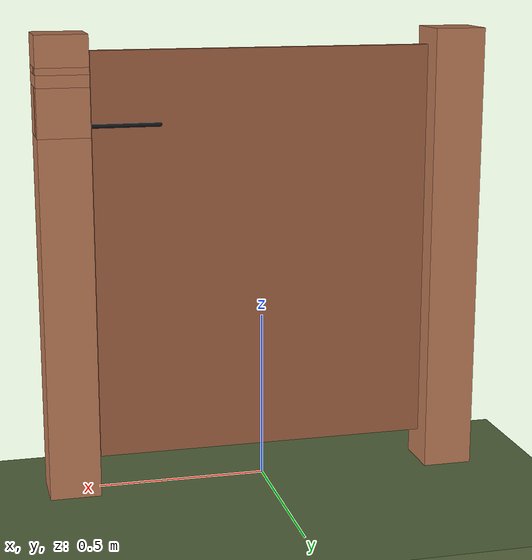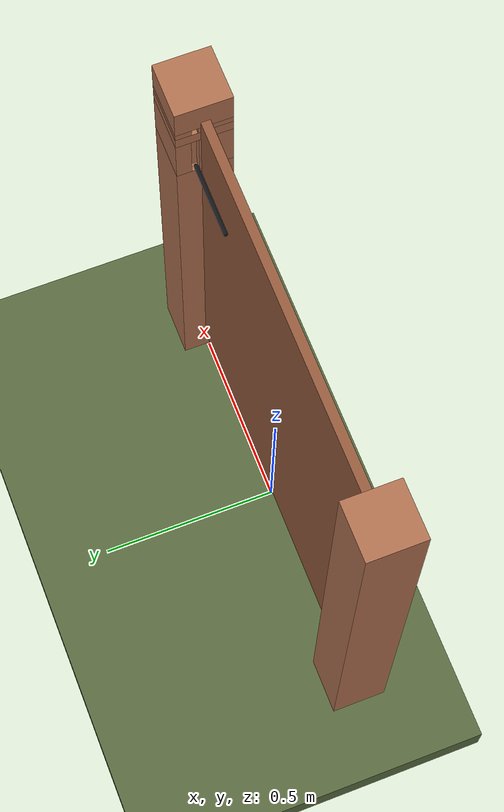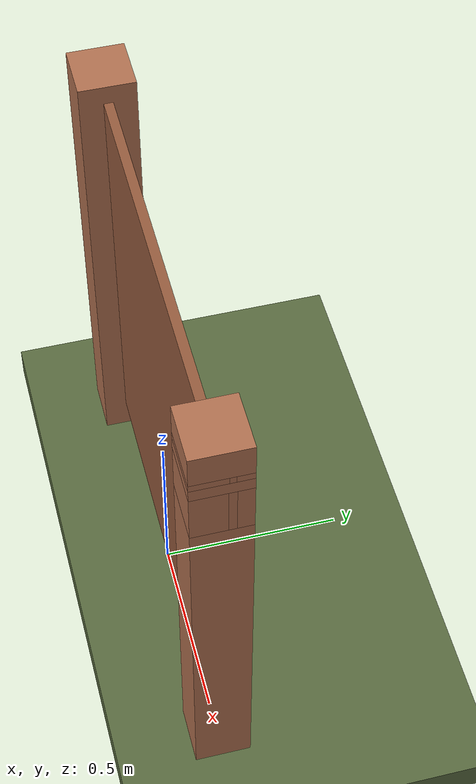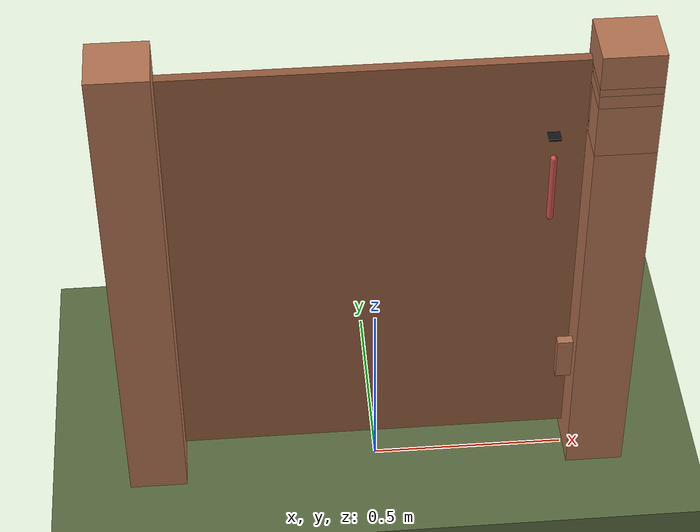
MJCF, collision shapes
<?xml version="1.0" ?>
<mujoco model="db0366_gate_swing_minimal">
  <compiler angle="radian" meshdir="../../hardware" texturedir="../../textures" autolimits="true" inertiafromgeom="false"/>
  <option timestep="0.002" integrator="implicitfast" cone="elliptic" impratio="10" noslip_iterations="3">
    <flag multiccd="enable"/>
  </option>
  <size memory="16M"/>
  <default>
    <geom condim="4" solref="0.005 1" solimp="0.95 0.99 0.001"/>
    <joint solreflimit="0.005 1" solimplimit="0.95 0.99 0.001"/>
    <tendon solreflimit="0.005 1"/>
    <equality solref="0.002 1"/>
  </default>
  <visual>
    <headlight ambient="0.4 0.4 0.4" diffuse="0.7 0.7 0.7" specular="0.2 0.2 0.2"/>
    <quality shadowsize="4096"/>
    <map znear="0.01" zfar="60"/>
  </visual>
  <asset>
    <mesh name="thumb_latch_0073ea78ed" file="thumb_latch_0073ea78ed.obj"/>
    <material name="mat_floor" rgba="0.35 0.42 0.25 1" specular="0.2" shininess="0.15" reflectance="0"/>
    <material name="mat_wall" rgba="0.78 0.76 0.7 1" specular="0.2" shininess="0.1" reflectance="0"/>
    <material name="mat_leaf" rgba="0.588 0.359 0.242 1" specular="0.2" shininess="0.4" reflectance="0"/>
    <material name="mat_leaf_brace" rgba="0.529 0.323 0.218 1" specular="0.2" shininess="0.2" reflectance="0"/>
    <material name="mat_hinge" rgba="0.65 0.66 0.68 1" specular="0.74" shininess="0.5" reflectance="0.36"/>
    <material name="mat_op_wrought_iron" rgba="0.08 0.08 0.09 1" specular="0.56" shininess="0.25" reflectance="0.24"/>
    <material name="mat_op_brass" rgba="0.85 0.66 0.3 1" specular="0.8" shininess="0.75" reflectance="0.4"/>
    <material name="mat_frame" rgba="0.7 0.45 0.32 1" specular="0.2" shininess="0.4" reflectance="0"/>
    <material name="mat_bumper_stop" rgba="0.08 0.08 0.08 1" specular="0.2" shininess="0.1" reflectance="0"/>
    <material name="mat_stop_base" rgba="0.9 0.9 0.92 1" specular="0.8" shininess="0.9" reflectance="0.4"/>
    <material name="mat_fence" rgba="0.7 0.45 0.32 1" specular="0.2" shininess="0.4" reflectance="0"/>
    <texture name="skybox" type="skybox" builtin="gradient" rgb1="0.6 0.7 0.85" rgb2="0.9 0.92 0.95" width="256" height="256"/>
  </asset>
  <worldbody>
    <light name="sun" pos="1.5 -2.5 4" dir="-0.3 0.5 -0.8" directional="true" diffuse="0.8 0.8 0.8" specular="0.3 0.3 0.3" castshadow="true"/>
    <light name="fill" pos="-1.5 2.5 3" dir="0.3 -0.5 -0.7" directional="true" diffuse="0.35 0.35 0.4" castshadow="false"/>
    <camera name="robot_view" pos="0 -1.875 1.135" xyaxes="1 0 0 0 0.26963 0.962964" fovy="52"/>
    <camera name="far_view" pos="0 1.875 1.135" xyaxes="-1 0 0 0 -0.26963 0.962964" fovy="52"/>
    <camera name="iso" pos="1.425 -1.575 1.435" xyaxes="0.741536 0.670913 0 -0.242917 0.268487 0.932151" fovy="46"/>
    <camera name="detail_handle" pos="0.597 -0.8475 1.23" xyaxes="0.97561 0.219512 0 -0.070934 0.315262 0.94635" fovy="38"/>
    <geom name="floor" type="box" size="6 6 0.05" pos="0 0 -0.05" material="mat_floor" group="0" contype="1" conaffinity="1" friction="0.8 0.005 0.0001" density="2400"/>
    <geom name="post_hinge" type="box" size="0.075 0.075 0.675" pos="-0.581 0 0.675" material="mat_frame" group="0" contype="1" conaffinity="1" friction="0.6 0.005 0.0001" density="350"/>
    <geom name="post_1135_wall_n" type="box" size="0.075 0.04475 0.07" pos="0.581 -0.03025 1.135" material="mat_frame" group="0" contype="1" conaffinity="1" friction="0.6 0.005 0.0001" density="350"/>
    <geom name="post_1135_wall_p" type="box" size="0.075 0.02025 0.07" pos="0.581 0.05475 1.135" material="mat_frame" group="0" contype="1" conaffinity="1" friction="0.6 0.005 0.0001" density="350"/>
    <geom name="post_1135_back" type="box" size="0.065 0.01 0.07" pos="0.591 0.0245 1.135" material="mat_frame" group="0" contype="1" conaffinity="1" friction="0.6 0.005 0.0001" density="350"/>
    <geom name="post_1250_wall_n" type="box" size="0.075 0.04575 0.01" pos="0.581 -0.02925 1.25" material="mat_frame" group="0" contype="1" conaffinity="1" friction="0.6 0.005 0.0001" density="350"/>
    <geom name="post_1250_wall_p" type="box" size="0.075 0.02125 0.01" pos="0.581 0.05375 1.25" material="mat_frame" group="0" contype="1" conaffinity="1" friction="0.6 0.005 0.0001" density="350"/>
    <geom name="post_1250_back" type="box" size="0.054 0.008 0.01" pos="0.602 0.0245 1.25" material="mat_frame" group="0" contype="1" conaffinity="1" friction="0.6 0.005 0.0001" density="350"/>
    <geom name="post_latch_0" type="box" size="0.075 0.075 0.5325" pos="0.581 0 0.5325" material="mat_frame" group="0" contype="1" conaffinity="1" friction="0.6 0.005 0.0001" density="350"/>
    <geom name="post_latch_1" type="box" size="0.075 0.075 0.0175" pos="0.581 0 1.2225" material="mat_frame" group="0" contype="1" conaffinity="1" friction="0.6 0.005 0.0001" density="350"/>
    <geom name="post_latch_2" type="box" size="0.075 0.075 0.045" pos="0.581 0 1.305" material="mat_frame" group="0" contype="1" conaffinity="1" friction="0.6 0.005 0.0001" density="350"/>
    <geom name="gate_stop" type="box" size="0.02 0.012 0.06" pos="0.486 -0.0245 0.35" material="mat_frame" group="0" contype="1" conaffinity="1" friction="0.6 0.005 0.0001" density="350"/>
    <site name="approach_point" pos="0 -1.5 0" quat="1 0 0 0" size="0.05" rgba="0.2 0.9 0.2 0.5" group="4"/>
    <site name="goal_point" pos="0 1.5 0" quat="1 0 0 0" size="0.05" rgba="0.2 0.9 0.2 0.5" group="4"/>
    <site name="door_plane_center" pos="0 0 0.61" quat="1 0 0 0" size="0.02" rgba="0.2 0.9 0.2 0.5" group="4"/>
    <body name="leaf" pos="-0.506 0 0">
      <inertial pos="0.532695 -0.002288 0.717676" mass="12.368264" quat="0.554578 -0.556607 -0.433802 -0.440962" diaginertia="1.082235985 1.456375384 2.535571828"/>
      <joint name="leaf_hinge" type="hinge" axis="0 0 1" pos="0.003 0.05 0" limited="true" range="0 1.570796" damping="1.21672" frictionloss="6.687775" stiffness="5" springref="-1.738821" armature="0.02"/>
      <geom name="leaf_slab" type="box" size="0.5 0.0125 0.6" pos="0.503 0 0.7" material="mat_leaf" group="0" contype="1" conaffinity="1" friction="0.35 0.005 0.0001" density="1"/>
      <geom name="leaf_suffolk_grip" type="mesh" mesh="thumb_latch_0073ea78ed" pos="0.923 -0.0125 0.95" quat="0.707107 0.707107 0 0" material="mat_op_wrought_iron" group="1" contype="0" conaffinity="0" density="7000"/>
      <geom name="leaf_suffolk_grip_col" type="capsule" size="0.008 0.09" pos="0.923 -0.0475 0.95" material="mat_op_wrought_iron" group="3" contype="1" conaffinity="1" rgba="0.8 0.3 0.3 0.25" friction="0.7 0.01 0.0001" density="7000"/>
      <site name="leaf_grip_n" pos="0.923 -0.0475 0.95" quat="1 0 0 0" size="0.012" rgba="0.2 0.9 0.2 0.5" group="4"/>
      <site name="leaf_edge_mid" pos="1.003 0 0.6" quat="1 0 0 0" size="0.02" rgba="0.2 0.9 0.2 0.5" group="4"/>
      <body name="leaf_thumb" pos="0.923 -0.0125 1.095">
        <inertial pos="0 -0.02 0" mass="0.03528" quat="1 0 0 0" diaginertia="0.000002411 0.000002752 0.000004951"/>
        <joint name="leaf_thumb_hinge" type="hinge" axis="1 0 0" limited="true" range="0 0.3" damping="0.155195" frictionloss="0.032" stiffness="0.6" springref="-0.5" armature="0.01"/>
        <geom name="leaf_thumb_geom" type="box" size="0.015 0.014 0.003" pos="0 -0.02 0" material="mat_op_wrought_iron" group="0" contype="1" conaffinity="1" friction="0.6 0.005 0.0001" density="7000"/>
        <site name="leaf_thumb_push" pos="0 -0.024 0.005" quat="1 0 0 0" size="0.01" rgba="0.2 0.9 0.2 0.5" group="4"/>
      </body>
      <body name="leaf_latch_bar" pos="0.803 0.0245 1.09">
        <inertial pos="0.106 0 0" mass="0.25" quat="0 0 0.707107 0.707107" diaginertia="0.000004465 0.000904065 0.000904065"/>
        <joint name="leaf_latch_bar_hinge" type="hinge" axis="0 -1 0" limited="true" range="0 0.6" damping="0.01" frictionloss="0.01" armature="0.005"/>
        <geom name="leaf_latch_bar_geom" type="capsule" size="0.006 0.1" pos="0.106 0 0" quat="0.707107 0 0.707107 0" material="mat_op_wrought_iron" group="0" contype="1" conaffinity="1" friction="0.6 0.005 0.0001" density="7850"/>
      </body>
    </body>
  </worldbody>
  <equality>
    <joint name="leaf_thumb_couple" joint1="leaf_latch_bar_hinge" joint2="leaf_thumb_hinge" polycoef="0 2 0 0 0" active="true"/>
  </equality>
  <sensor>
    <jointpos name="leaf_hinge_pos" joint="leaf_hinge"/>
    <jointvel name="leaf_hinge_vel" joint="leaf_hinge"/>
    <jointpos name="leaf_thumb_hinge_pos" joint="leaf_thumb_hinge"/>
    <jointvel name="leaf_thumb_hinge_vel" joint="leaf_thumb_hinge"/>
    <jointpos name="leaf_latch_bar_hinge_pos" joint="leaf_latch_bar_hinge"/>
    <jointvel name="leaf_latch_bar_hinge_vel" joint="leaf_latch_bar_hinge"/>
  </sensor>
</mujoco>
